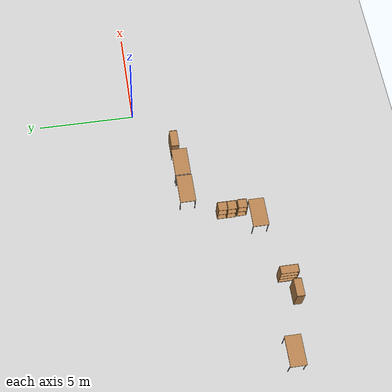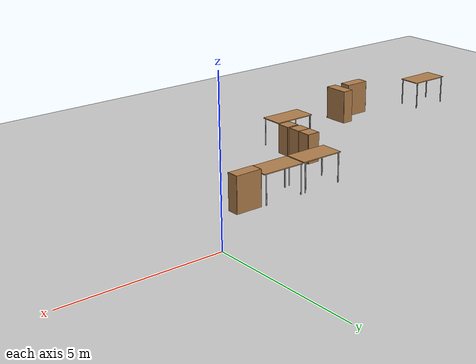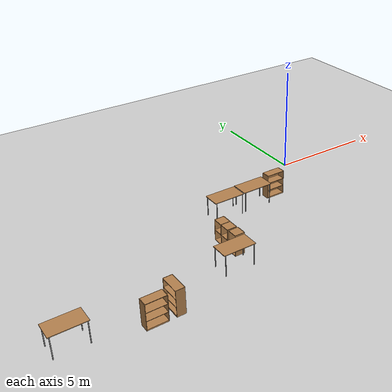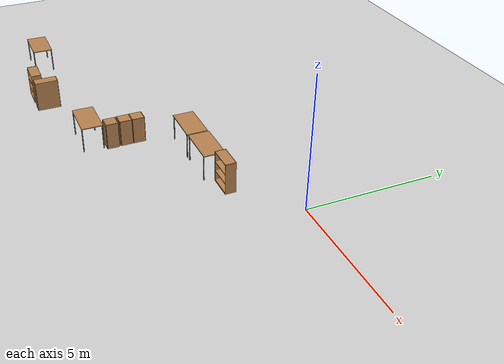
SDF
<sdf version="1.6">
 <world name="default">
  <model name="ground_plane">
   <static>1</static>
   <link name="link">
    <collision name="collision">
     <geometry><plane><normal>0 0 1</normal><size>100 100</size></plane></geometry>
     <surface>
      <contact><collide_bitmask>65535</collide_bitmask></contact>
      <friction><ode><mu>100</mu><mu2>50</mu2></ode></friction>
     </surface>
    </collision>
    <visual name="visual">
     <cast_shadows>0</cast_shadows>
     <geometry><plane><normal>0 0 1</normal><size>100 100</size></plane></geometry>
     <material>
      <script><uri>file://media/materials/scripts/gazebo.material</uri><name>Gazebo/Grey</name></script>
     </material>
    </visual>
   </link>
  </model>
  <model name="5th_floor_3.2">
   <model name="bookshelf">
    <static>1</static>
    <link name="link">
     <inertial><mass>1</mass></inertial>
     <collision name="back">
      <pose>0 0.005 0.6 0 -0 0</pose>
      <geometry><box><size>0.9 0.01 1.2</size></box></geometry>
     </collision>
     <visual name="visual1">
      <pose>0 0.005 0.6 0 -0 0</pose>
      <geometry><box><size>0.9 0.01 1.2</size></box></geometry>
      <material>
       <script><uri>file://media/materials/scripts/gazebo.material</uri><name>Gazebo/Wood</name></script>
      </material>
     </visual>
     <collision name="left_side">
      <pose>0.45 -0.195 0.6 0 -0 0</pose>
      <geometry><box><size>0.02 0.4 1.2</size></box></geometry>
     </collision>
     <visual name="visual2">
      <pose>0.45 -0.195 0.6 0 -0 0</pose>
      <geometry><box><size>0.02 0.4 1.2</size></box></geometry>
      <material>
       <script><uri>file://media/materials/scripts/gazebo.material</uri><name>Gazebo/Wood</name></script>
      </material>
     </visual>
     <collision name="right_side">
      <pose>-0.45 -0.195 0.6 0 -0 0</pose>
      <geometry><box><size>0.02 0.4 1.2</size></box></geometry>
     </collision>
     <visual name="visual3">
      <pose>-0.45 -0.195 0.6 0 -0 0</pose>
      <geometry><box><size>0.02 0.4 1.2</size></box></geometry>
      <material>
       <script><uri>file://media/materials/scripts/gazebo.material</uri><name>Gazebo/Wood</name></script>
      </material>
     </visual>
     <collision name="bottom">
      <pose>0 -0.195 0.03 0 -0 0</pose>
      <geometry><box><size>0.88 0.4 0.06</size></box></geometry>
     </collision>
     <visual name="visual4">
      <pose>0 -0.195 0.03 0 -0 0</pose>
      <geometry><box><size>0.88 0.4 0.06</size></box></geometry>
      <material>
       <script><uri>file://media/materials/scripts/gazebo.material</uri><name>Gazebo/Wood</name></script>
      </material>
     </visual>
     <collision name="top">
      <pose>0 -0.195 1.19 0 -0 0</pose>
      <geometry><box><size>0.88 0.4 0.02</size></box></geometry>
     </collision>
     <visual name="visual5">
      <pose>0 -0.195 1.19 0 -0 0</pose>
      <geometry><box><size>0.88 0.4 0.02</size></box></geometry>
      <material>
       <script><uri>file://media/materials/scripts/gazebo.material</uri><name>Gazebo/Wood</name></script>
      </material>
     </visual>
     <collision name="low_shelf">
      <pose>0 -0.195 0.43 0 -0 0</pose>
      <geometry><box><size>0.88 0.4 0.02</size></box></geometry>
     </collision>
     <visual name="visual6">
      <pose>0 -0.195 0.43 0 -0 0</pose>
      <geometry><box><size>0.88 0.4 0.02</size></box></geometry>
      <material>
       <script><uri>file://media/materials/scripts/gazebo.material</uri><name>Gazebo/Wood</name></script>
      </material>
     </visual>
     <collision name="high_shelf">
      <pose>0 -0.195 0.8 0 -0 0</pose>
      <geometry><box><size>0.88 0.4 0.02</size></box></geometry>
     </collision>
     <visual name="visual7">
      <pose>0 -0.195 0.8 0 -0 0</pose>
      <geometry><box><size>0.88 0.4 0.02</size></box></geometry>
      <material>
       <script><uri>file://media/materials/scripts/gazebo.material</uri><name>Gazebo/Wood</name></script>
      </material>
     </visual>
    </link>
    <pose>3.59774 2.10176 0 0 -0 0</pose>
   </model>
   <model name="bookshelf_0">
    <static>1</static>
    <link name="link">
     <inertial><mass>1</mass></inertial>
     <collision name="back">
      <pose>0 0.005 0.6 0 -0 0</pose>
      <geometry><box><size>0.9 0.01 1.2</size></box></geometry>
     </collision>
     <visual name="visual1">
      <pose>0 0.005 0.6 0 -0 0</pose>
      <geometry><box><size>0.9 0.01 1.2</size></box></geometry>
      <material>
       <script><uri>file://media/materials/scripts/gazebo.material</uri><name>Gazebo/Wood</name></script>
      </material>
     </visual>
     <collision name="left_side">
      <pose>0.45 -0.195 0.6 0 -0 0</pose>
      <geometry><box><size>0.02 0.4 1.2</size></box></geometry>
     </collision>
     <visual name="visual2">
      <pose>0.45 -0.195 0.6 0 -0 0</pose>
      <geometry><box><size>0.02 0.4 1.2</size></box></geometry>
      <material>
       <script><uri>file://media/materials/scripts/gazebo.material</uri><name>Gazebo/Wood</name></script>
      </material>
     </visual>
     <collision name="right_side">
      <pose>-0.45 -0.195 0.6 0 -0 0</pose>
      <geometry><box><size>0.02 0.4 1.2</size></box></geometry>
     </collision>
     <visual name="visual3">
      <pose>-0.45 -0.195 0.6 0 -0 0</pose>
      <geometry><box><size>0.02 0.4 1.2</size></box></geometry>
      <material>
       <script><uri>file://media/materials/scripts/gazebo.material</uri><name>Gazebo/Wood</name></script>
      </material>
     </visual>
     <collision name="bottom">
      <pose>0 -0.195 0.03 0 -0 0</pose>
      <geometry><box><size>0.88 0.4 0.06</size></box></geometry>
     </collision>
     <visual name="visual4">
      <pose>0 -0.195 0.03 0 -0 0</pose>
      <geometry><box><size>0.88 0.4 0.06</size></box></geometry>
      <material>
       <script><uri>file://media/materials/scripts/gazebo.material</uri><name>Gazebo/Wood</name></script>
      </material>
     </visual>
     <collision name="top">
      <pose>0 -0.195 1.19 0 -0 0</pose>
      <geometry><box><size>0.88 0.4 0.02</size></box></geometry>
     </collision>
     <visual name="visual5">
      <pose>0 -0.195 1.19 0 -0 0</pose>
      <geometry><box><size>0.88 0.4 0.02</size></box></geometry>
      <material>
       <script><uri>file://media/materials/scripts/gazebo.material</uri><name>Gazebo/Wood</name></script>
      </material>
     </visual>
     <collision name="low_shelf">
      <pose>0 -0.195 0.43 0 -0 0</pose>
      <geometry><box><size>0.88 0.4 0.02</size></box></geometry>
     </collision>
     <visual name="visual6">
      <pose>0 -0.195 0.43 0 -0 0</pose>
      <geometry><box><size>0.88 0.4 0.02</size></box></geometry>
      <material>
       <script><uri>file://media/materials/scripts/gazebo.material</uri><name>Gazebo/Wood</name></script>
      </material>
     </visual>
     <collision name="high_shelf">
      <pose>0 -0.195 0.8 0 -0 0</pose>
      <geometry><box><size>0.88 0.4 0.02</size></box></geometry>
     </collision>
     <visual name="visual7">
      <pose>0 -0.195 0.8 0 -0 0</pose>
      <geometry><box><size>0.88 0.4 0.02</size></box></geometry>
      <material>
       <script><uri>file://media/materials/scripts/gazebo.material</uri><name>Gazebo/Wood</name></script>
      </material>
     </visual>
    </link>
    <pose>-4.10703 -2.55567 0 0 0 -1.56663</pose>
   </model>
   <model name="cabinet">
    <static>1</static>
    <link name="cabinet_bottom_plate">
     <inertial>
      <pose>0 0 -1 0 -0 0</pose>
      <inertia><ixx>2.05</ixx><ixy>0</ixy><ixz>0</ixz><iyy>2.05</iyy><iyz>0</iyz><izz>2.05</izz></inertia>
      <mass>25</mass>
     </inertial>
     <collision name="cabinet_bottom_plate_geom">
      <pose>0 0 0.01 0 -0 0</pose>
      <geometry><box><size>0.45 0.45 0.02</size></box></geometry>
     </collision>
     <visual name="cabinet_bottom_plate_geom_visual">
      <pose>0 0 0.01 0 -0 0</pose>
      <geometry><box><size>0.45 0.45 0.02</size></box></geometry>
      <material>
       <script><uri>file://media/materials/scripts/gazebo.material</uri><name>Gazebo/Wood</name></script>
      </material>
     </visual>
     <collision name="cabinet_bottom_plate_geom_cabinet_back_plate">
      <pose>0.235 0 0.51 0 -0 0</pose>
      <geometry><box><size>0.02 0.45 1.02</size></box></geometry>
     </collision>
     <visual name="cabinet_bottom_plate_geom_cabinet_back_plate_visual">
      <pose>0.235 0 0.51 0 -0 0</pose>
      <geometry><box><size>0.02 0.45 1.02</size></box></geometry>
      <material>
       <script><uri>file://media/materials/scripts/gazebo.material</uri><name>Gazebo/Wood</name></script>
      </material>
     </visual>
     <collision name="cabinet_bottom_plate_geom_cabinet_left_plate">
      <pose>0 0.235 0.51 0 -0 0</pose>
      <geometry><box><size>0.45 0.02 1.02</size></box></geometry>
     </collision>
     <visual name="cabinet_bottom_plate_geom_cabinet_left_plate_visual">
      <pose>0 0.235 0.51 0 -0 0</pose>
      <geometry><box><size>0.45 0.02 1.02</size></box></geometry>
      <material>
       <script><uri>file://media/materials/scripts/gazebo.material</uri><name>Gazebo/Wood</name></script>
      </material>
     </visual>
     <collision name="cabinet_bottom_plate_geom_cabinet_middle_plate">
      <pose>0 0 0.51 0 -0 0</pose>
      <geometry><box><size>0.45 0.45 0.02</size></box></geometry>
     </collision>
     <visual name="cabinet_bottom_plate_geom_cabinet_middle_plate_visual">
      <pose>0 0 0.51 0 -0 0</pose>
      <geometry><box><size>0.45 0.45 0.02</size></box></geometry>
      <material>
       <script><uri>file://media/materials/scripts/gazebo.material</uri><name>Gazebo/Wood</name></script>
      </material>
     </visual>
     <collision name="cabinet_bottom_plate_geom_cabinet_right_plate">
      <pose>0 -0.235 0.51 0 -0 0</pose>
      <geometry><box><size>0.45 0.02 1.02</size></box></geometry>
     </collision>
     <visual name="cabinet_bottom_plate_geom_cabinet_right_plate_visual">
      <pose>0 -0.235 0.51 0 -0 0</pose>
      <geometry><box><size>0.45 0.02 1.02</size></box></geometry>
      <material>
       <script><uri>file://media/materials/scripts/gazebo.material</uri><name>Gazebo/Wood</name></script>
      </material>
     </visual>
     <collision name="cabinet_bottom_plate_geom_cabinet_top_plate">
      <pose>0 0 1.01 0 -0 0</pose>
      <geometry><box><size>0.45 0.45 0.02</size></box></geometry>
     </collision>
     <visual name="cabinet_bottom_plate_geom_cabinet_top_plate_visual">
      <pose>0 0 1.01 0 -0 0</pose>
      <geometry><box><size>0.45 0.45 0.02</size></box></geometry>
      <material>
       <script><uri>file://media/materials/scripts/gazebo.material</uri><name>Gazebo/Wood</name></script>
      </material>
     </visual>
    </link>
    <pose>-0.500512 0.057126 0 0 -0 0</pose>
   </model>
   <model name="cabinet_0">
    <static>1</static>
    <link name="cabinet_bottom_plate">
     <inertial>
      <pose>0 0 -1 0 -0 0</pose>
      <inertia><ixx>2.05</ixx><ixy>0</ixy><ixz>0</ixz><iyy>2.05</iyy><iyz>0</iyz><izz>2.05</izz></inertia>
      <mass>25</mass>
     </inertial>
     <collision name="cabinet_bottom_plate_geom">
      <pose>0 0 0.01 0 -0 0</pose>
      <geometry><box><size>0.45 0.45 0.02</size></box></geometry>
     </collision>
     <visual name="cabinet_bottom_plate_geom_visual">
      <pose>0 0 0.01 0 -0 0</pose>
      <geometry><box><size>0.45 0.45 0.02</size></box></geometry>
      <material>
       <script><uri>file://media/materials/scripts/gazebo.material</uri><name>Gazebo/Wood</name></script>
      </material>
     </visual>
     <collision name="cabinet_bottom_plate_geom_cabinet_back_plate">
      <pose>0.235 0 0.51 0 -0 0</pose>
      <geometry><box><size>0.02 0.45 1.02</size></box></geometry>
     </collision>
     <visual name="cabinet_bottom_plate_geom_cabinet_back_plate_visual">
      <pose>0.235 0 0.51 0 -0 0</pose>
      <geometry><box><size>0.02 0.45 1.02</size></box></geometry>
      <material>
       <script><uri>file://media/materials/scripts/gazebo.material</uri><name>Gazebo/Wood</name></script>
      </material>
     </visual>
     <collision name="cabinet_bottom_plate_geom_cabinet_left_plate">
      <pose>0 0.235 0.51 0 -0 0</pose>
      <geometry><box><size>0.45 0.02 1.02</size></box></geometry>
     </collision>
     <visual name="cabinet_bottom_plate_geom_cabinet_left_plate_visual">
      <pose>0 0.235 0.51 0 -0 0</pose>
      <geometry><box><size>0.45 0.02 1.02</size></box></geometry>
      <material>
       <script><uri>file://media/materials/scripts/gazebo.material</uri><name>Gazebo/Wood</name></script>
      </material>
     </visual>
     <collision name="cabinet_bottom_plate_geom_cabinet_middle_plate">
      <pose>0 0 0.51 0 -0 0</pose>
      <geometry><box><size>0.45 0.45 0.02</size></box></geometry>
     </collision>
     <visual name="cabinet_bottom_plate_geom_cabinet_middle_plate_visual">
      <pose>0 0 0.51 0 -0 0</pose>
      <geometry><box><size>0.45 0.45 0.02</size></box></geometry>
      <material>
       <script><uri>file://media/materials/scripts/gazebo.material</uri><name>Gazebo/Wood</name></script>
      </material>
     </visual>
     <collision name="cabinet_bottom_plate_geom_cabinet_right_plate">
      <pose>0 -0.235 0.51 0 -0 0</pose>
      <geometry><box><size>0.45 0.02 1.02</size></box></geometry>
     </collision>
     <visual name="cabinet_bottom_plate_geom_cabinet_right_plate_visual">
      <pose>0 -0.235 0.51 0 -0 0</pose>
      <geometry><box><size>0.45 0.02 1.02</size></box></geometry>
      <material>
       <script><uri>file://media/materials/scripts/gazebo.material</uri><name>Gazebo/Wood</name></script>
      </material>
     </visual>
     <collision name="cabinet_bottom_plate_geom_cabinet_top_plate">
      <pose>0 0 1.01 0 -0 0</pose>
      <geometry><box><size>0.45 0.45 0.02</size></box></geometry>
     </collision>
     <visual name="cabinet_bottom_plate_geom_cabinet_top_plate_visual">
      <pose>0 0 1.01 0 -0 0</pose>
      <geometry><box><size>0.45 0.45 0.02</size></box></geometry>
      <material>
       <script><uri>file://media/materials/scripts/gazebo.material</uri><name>Gazebo/Wood</name></script>
      </material>
     </visual>
    </link>
    <pose>-0.500512 -0.428354 0 0 -0 0</pose>
   </model>
   <model name="cabinet_1">
    <static>1</static>
    <link name="cabinet_bottom_plate">
     <inertial>
      <pose>0 0 -1 0 -0 0</pose>
      <inertia><ixx>2.05</ixx><ixy>0</ixy><ixz>0</ixz><iyy>2.05</iyy><iyz>0</iyz><izz>2.05</izz></inertia>
      <mass>25</mass>
     </inertial>
     <collision name="cabinet_bottom_plate_geom">
      <pose>0 0 0.01 0 -0 0</pose>
      <geometry><box><size>0.45 0.45 0.02</size></box></geometry>
     </collision>
     <visual name="cabinet_bottom_plate_geom_visual">
      <pose>0 0 0.01 0 -0 0</pose>
      <geometry><box><size>0.45 0.45 0.02</size></box></geometry>
      <material>
       <script><uri>file://media/materials/scripts/gazebo.material</uri><name>Gazebo/Wood</name></script>
      </material>
     </visual>
     <collision name="cabinet_bottom_plate_geom_cabinet_back_plate">
      <pose>0.235 0 0.51 0 -0 0</pose>
      <geometry><box><size>0.02 0.45 1.02</size></box></geometry>
     </collision>
     <visual name="cabinet_bottom_plate_geom_cabinet_back_plate_visual">
      <pose>0.235 0 0.51 0 -0 0</pose>
      <geometry><box><size>0.02 0.45 1.02</size></box></geometry>
      <material>
       <script><uri>file://media/materials/scripts/gazebo.material</uri><name>Gazebo/Wood</name></script>
      </material>
     </visual>
     <collision name="cabinet_bottom_plate_geom_cabinet_left_plate">
      <pose>0 0.235 0.51 0 -0 0</pose>
      <geometry><box><size>0.45 0.02 1.02</size></box></geometry>
     </collision>
     <visual name="cabinet_bottom_plate_geom_cabinet_left_plate_visual">
      <pose>0 0.235 0.51 0 -0 0</pose>
      <geometry><box><size>0.45 0.02 1.02</size></box></geometry>
      <material>
       <script><uri>file://media/materials/scripts/gazebo.material</uri><name>Gazebo/Wood</name></script>
      </material>
     </visual>
     <collision name="cabinet_bottom_plate_geom_cabinet_middle_plate">
      <pose>0 0 0.51 0 -0 0</pose>
      <geometry><box><size>0.45 0.45 0.02</size></box></geometry>
     </collision>
     <visual name="cabinet_bottom_plate_geom_cabinet_middle_plate_visual">
      <pose>0 0 0.51 0 -0 0</pose>
      <geometry><box><size>0.45 0.45 0.02</size></box></geometry>
      <material>
       <script><uri>file://media/materials/scripts/gazebo.material</uri><name>Gazebo/Wood</name></script>
      </material>
     </visual>
     <collision name="cabinet_bottom_plate_geom_cabinet_right_plate">
      <pose>0 -0.235 0.51 0 -0 0</pose>
      <geometry><box><size>0.45 0.02 1.02</size></box></geometry>
     </collision>
     <visual name="cabinet_bottom_plate_geom_cabinet_right_plate_visual">
      <pose>0 -0.235 0.51 0 -0 0</pose>
      <geometry><box><size>0.45 0.02 1.02</size></box></geometry>
      <material>
       <script><uri>file://media/materials/scripts/gazebo.material</uri><name>Gazebo/Wood</name></script>
      </material>
     </visual>
     <collision name="cabinet_bottom_plate_geom_cabinet_top_plate">
      <pose>0 0 1.01 0 -0 0</pose>
      <geometry><box><size>0.45 0.45 0.02</size></box></geometry>
     </collision>
     <visual name="cabinet_bottom_plate_geom_cabinet_top_plate_visual">
      <pose>0 0 1.01 0 -0 0</pose>
      <geometry><box><size>0.45 0.45 0.02</size></box></geometry>
      <material>
       <script><uri>file://media/materials/scripts/gazebo.material</uri><name>Gazebo/Wood</name></script>
      </material>
     </visual>
    </link>
    <pose>-0.47735 -0.960159 0 0 -0 0</pose>
   </model>
   <model name="table">
    <static>1</static>
    <link name="link">
     <collision name="surface">
      <pose>0 0 1 0 -0 0</pose>
      <geometry><box><size>1.5 0.8 0.03</size></box></geometry>
      <surface><friction><ode><mu>0.6</mu><mu2>0.6</mu2></ode></friction></surface>
     </collision>
     <visual name="visual1">
      <pose>0 0 1 0 -0 0</pose>
      <geometry><box><size>1.5 0.8 0.03</size></box></geometry>
      <material>
       <script><uri>file://media/materials/scripts/gazebo.material</uri><name>Gazebo/Wood</name></script>
      </material>
     </visual>
     <collision name="front_left_leg">
      <pose>0.68 0.38 0.5 0 -0 0</pose>
      <geometry><cylinder><radius>0.02</radius><length>1</length></cylinder></geometry>
     </collision>
     <visual name="front_left_leg">
      <pose>0.68 0.38 0.5 0 -0 0</pose>
      <geometry><cylinder><radius>0.02</radius><length>1</length></cylinder></geometry>
      <material>
       <script><uri>file://media/materials/scripts/gazebo.material</uri><name>Gazebo/Grey</name></script>
      </material>
     </visual>
     <collision name="front_right_leg">
      <pose>0.68 -0.38 0.5 0 -0 0</pose>
      <geometry><cylinder><radius>0.02</radius><length>1</length></cylinder></geometry>
     </collision>
     <visual name="front_right_leg">
      <pose>0.68 -0.38 0.5 0 -0 0</pose>
      <geometry><cylinder><radius>0.02</radius><length>1</length></cylinder></geometry>
      <material>
       <script><uri>file://media/materials/scripts/gazebo.material</uri><name>Gazebo/Grey</name></script>
      </material>
     </visual>
     <collision name="back_right_leg">
      <pose>-0.68 -0.38 0.5 0 -0 0</pose>
      <geometry><cylinder><radius>0.02</radius><length>1</length></cylinder></geometry>
     </collision>
     <visual name="back_right_leg">
      <pose>-0.68 -0.38 0.5 0 -0 0</pose>
      <geometry><cylinder><radius>0.02</radius><length>1</length></cylinder></geometry>
      <material>
       <script><uri>file://media/materials/scripts/gazebo.material</uri><name>Gazebo/Grey</name></script>
      </material>
     </visual>
     <collision name="back_left_leg">
      <pose>-0.68 0.38 0.5 0 -0 0</pose>
      <geometry><cylinder><radius>0.02</radius><length>1</length></cylinder></geometry>
     </collision>
     <visual name="back_left_leg">
      <pose>-0.68 0.38 0.5 0 -0 0</pose>
      <geometry><cylinder><radius>0.02</radius><length>1</length></cylinder></geometry>
      <material>
       <script><uri>file://media/materials/scripts/gazebo.material</uri><name>Gazebo/Grey</name></script>
      </material>
     </visual>
    </link>
    <pose>0.746904 1.71954 0 0 -0 0</pose>
   </model>
   <model name="table_0">
    <static>1</static>
    <link name="link">
     <collision name="surface">
      <pose>0 0 1 0 -0 0</pose>
      <geometry><box><size>1.5 0.8 0.03</size></box></geometry>
      <surface><friction><ode><mu>0.6</mu><mu2>0.6</mu2></ode></friction></surface>
     </collision>
     <visual name="visual1">
      <pose>0 0 1 0 -0 0</pose>
      <geometry><box><size>1.5 0.8 0.03</size></box></geometry>
      <material>
       <script><uri>file://media/materials/scripts/gazebo.material</uri><name>Gazebo/Wood</name></script>
      </material>
     </visual>
     <collision name="front_left_leg">
      <pose>0.68 0.38 0.5 0 -0 0</pose>
      <geometry><cylinder><radius>0.02</radius><length>1</length></cylinder></geometry>
     </collision>
     <visual name="front_left_leg">
      <pose>0.68 0.38 0.5 0 -0 0</pose>
      <geometry><cylinder><radius>0.02</radius><length>1</length></cylinder></geometry>
      <material>
       <script><uri>file://media/materials/scripts/gazebo.material</uri><name>Gazebo/Grey</name></script>
      </material>
     </visual>
     <collision name="front_right_leg">
      <pose>0.68 -0.38 0.5 0 -0 0</pose>
      <geometry><cylinder><radius>0.02</radius><length>1</length></cylinder></geometry>
     </collision>
     <visual name="front_right_leg">
      <pose>0.68 -0.38 0.5 0 -0 0</pose>
      <geometry><cylinder><radius>0.02</radius><length>1</length></cylinder></geometry>
      <material>
       <script><uri>file://media/materials/scripts/gazebo.material</uri><name>Gazebo/Grey</name></script>
      </material>
     </visual>
     <collision name="back_right_leg">
      <pose>-0.68 -0.38 0.5 0 -0 0</pose>
      <geometry><cylinder><radius>0.02</radius><length>1</length></cylinder></geometry>
     </collision>
     <visual name="back_right_leg">
      <pose>-0.68 -0.38 0.5 0 -0 0</pose>
      <geometry><cylinder><radius>0.02</radius><length>1</length></cylinder></geometry>
      <material>
       <script><uri>file://media/materials/scripts/gazebo.material</uri><name>Gazebo/Grey</name></script>
      </material>
     </visual>
     <collision name="back_left_leg">
      <pose>-0.68 0.38 0.5 0 -0 0</pose>
      <geometry><cylinder><radius>0.02</radius><length>1</length></cylinder></geometry>
     </collision>
     <visual name="back_left_leg">
      <pose>-0.68 0.38 0.5 0 -0 0</pose>
      <geometry><cylinder><radius>0.02</radius><length>1</length></cylinder></geometry>
      <material>
       <script><uri>file://media/materials/scripts/gazebo.material</uri><name>Gazebo/Grey</name></script>
      </material>
     </visual>
    </link>
    <pose>2.29592 1.7426 0 0 -0 0</pose>
   </model>
   <model name="table_1">
    <static>1</static>
    <link name="link">
     <collision name="surface">
      <pose>0 0 1 0 -0 0</pose>
      <geometry><box><size>1.5 0.8 0.03</size></box></geometry>
      <surface><friction><ode><mu>0.6</mu><mu2>0.6</mu2></ode></friction></surface>
     </collision>
     <visual name="visual1">
      <pose>0 0 1 0 -0 0</pose>
      <geometry><box><size>1.5 0.8 0.03</size></box></geometry>
      <material>
       <script><uri>file://media/materials/scripts/gazebo.material</uri><name>Gazebo/Wood</name></script>
      </material>
     </visual>
     <collision name="front_left_leg">
      <pose>0.68 0.38 0.5 0 -0 0</pose>
      <geometry><cylinder><radius>0.02</radius><length>1</length></cylinder></geometry>
     </collision>
     <visual name="front_left_leg">
      <pose>0.68 0.38 0.5 0 -0 0</pose>
      <geometry><cylinder><radius>0.02</radius><length>1</length></cylinder></geometry>
      <material>
       <script><uri>file://media/materials/scripts/gazebo.material</uri><name>Gazebo/Grey</name></script>
      </material>
     </visual>
     <collision name="front_right_leg">
      <pose>0.68 -0.38 0.5 0 -0 0</pose>
      <geometry><cylinder><radius>0.02</radius><length>1</length></cylinder></geometry>
     </collision>
     <visual name="front_right_leg">
      <pose>0.68 -0.38 0.5 0 -0 0</pose>
      <geometry><cylinder><radius>0.02</radius><length>1</length></cylinder></geometry>
      <material>
       <script><uri>file://media/materials/scripts/gazebo.material</uri><name>Gazebo/Grey</name></script>
      </material>
     </visual>
     <collision name="back_right_leg">
      <pose>-0.68 -0.38 0.5 0 -0 0</pose>
      <geometry><cylinder><radius>0.02</radius><length>1</length></cylinder></geometry>
     </collision>
     <visual name="back_right_leg">
      <pose>-0.68 -0.38 0.5 0 -0 0</pose>
      <geometry><cylinder><radius>0.02</radius><length>1</length></cylinder></geometry>
      <material>
       <script><uri>file://media/materials/scripts/gazebo.material</uri><name>Gazebo/Grey</name></script>
      </material>
     </visual>
     <collision name="back_left_leg">
      <pose>-0.68 0.38 0.5 0 -0 0</pose>
      <geometry><cylinder><radius>0.02</radius><length>1</length></cylinder></geometry>
     </collision>
     <visual name="back_left_leg">
      <pose>-0.68 0.38 0.5 0 -0 0</pose>
      <geometry><cylinder><radius>0.02</radius><length>1</length></cylinder></geometry>
      <material>
       <script><uri>file://media/materials/scripts/gazebo.material</uri><name>Gazebo/Grey</name></script>
      </material>
     </visual>
    </link>
    <pose>-1.05517 -1.67685 0 0 -0 0</pose>
   </model>
   <static>0</static>
   <pose>-5.8522 -3.82308 0 0 -0 0</pose>
  </model>
  <model name="table_13">
   <static>1</static>
   <link name="link">
    <collision name="surface">
     <pose>0 0 1 0 -0 0</pose>
     <geometry><box><size>1.5 0.8 0.03</size></box></geometry>
     <surface><friction><ode><mu>0.6</mu><mu2>0.6</mu2></ode></friction></surface>
    </collision>
    <visual name="visual1">
     <pose>0 0 1 0 -0 0</pose>
     <geometry><box><size>1.5 0.8 0.03</size></box></geometry>
     <material>
      <script><uri>file://media/materials/scripts/gazebo.material</uri><name>Gazebo/Wood</name></script>
     </material>
    </visual>
    <collision name="front_left_leg">
     <pose>0.68 0.38 0.5 0 -0 0</pose>
     <geometry><cylinder><radius>0.02</radius><length>1</length></cylinder></geometry>
    </collision>
    <visual name="front_left_leg">
     <pose>0.68 0.38 0.5 0 -0 0</pose>
     <geometry><cylinder><radius>0.02</radius><length>1</length></cylinder></geometry>
     <material>
      <script><uri>file://media/materials/scripts/gazebo.material</uri><name>Gazebo/Grey</name></script>
     </material>
    </visual>
    <collision name="front_right_leg">
     <pose>0.68 -0.38 0.5 0 -0 0</pose>
     <geometry><cylinder><radius>0.02</radius><length>1</length></cylinder></geometry>
    </collision>
    <visual name="front_right_leg">
     <pose>0.68 -0.38 0.5 0 -0 0</pose>
     <geometry><cylinder><radius>0.02</radius><length>1</length></cylinder></geometry>
     <material>
      <script><uri>file://media/materials/scripts/gazebo.material</uri><name>Gazebo/Grey</name></script>
     </material>
    </visual>
    <collision name="back_right_leg">
     <pose>-0.68 -0.38 0.5 0 -0 0</pose>
     <geometry><cylinder><radius>0.02</radius><length>1</length></cylinder></geometry>
    </collision>
    <visual name="back_right_leg">
     <pose>-0.68 -0.38 0.5 0 -0 0</pose>
     <geometry><cylinder><radius>0.02</radius><length>1</length></cylinder></geometry>
     <material>
      <script><uri>file://media/materials/scripts/gazebo.material</uri><name>Gazebo/Grey</name></script>
     </material>
    </visual>
    <collision name="back_left_leg">
     <pose>-0.68 0.38 0.5 0 -0 0</pose>
     <geometry><cylinder><radius>0.02</radius><length>1</length></cylinder></geometry>
    </collision>
    <visual name="back_left_leg">
     <pose>-0.68 0.38 0.5 0 -0 0</pose>
     <geometry><cylinder><radius>0.02</radius><length>1</length></cylinder></geometry>
     <material>
      <script><uri>file://media/materials/scripts/gazebo.material</uri><name>Gazebo/Grey</name></script>
     </material>
    </visual>
   </link>
   <pose>-14.0778 -5.87648 0 0 -0 0</pose>
  </model>
  <model name="bookshelf_5">
   <static>1</static>
   <link name="link">
    <inertial><mass>1</mass></inertial>
    <collision name="back">
     <pose>0 0.005 0.6 0 -0 0</pose>
     <geometry><box><size>0.9 0.01 1.2</size></box></geometry>
    </collision>
    <visual name="visual1">
     <pose>0 0.005 0.6 0 -0 0</pose>
     <geometry><box><size>0.9 0.01 1.2</size></box></geometry>
     <material>
      <script><uri>file://media/materials/scripts/gazebo.material</uri><name>Gazebo/Wood</name></script>
     </material>
    </visual>
    <collision name="left_side">
     <pose>0.45 -0.195 0.6 0 -0 0</pose>
     <geometry><box><size>0.02 0.4 1.2</size></box></geometry>
    </collision>
    <visual name="visual2">
     <pose>0.45 -0.195 0.6 0 -0 0</pose>
     <geometry><box><size>0.02 0.4 1.2</size></box></geometry>
     <material>
      <script><uri>file://media/materials/scripts/gazebo.material</uri><name>Gazebo/Wood</name></script>
     </material>
    </visual>
    <collision name="right_side">
     <pose>-0.45 -0.195 0.6 0 -0 0</pose>
     <geometry><box><size>0.02 0.4 1.2</size></box></geometry>
    </collision>
    <visual name="visual3">
     <pose>-0.45 -0.195 0.6 0 -0 0</pose>
     <geometry><box><size>0.02 0.4 1.2</size></box></geometry>
     <material>
      <script><uri>file://media/materials/scripts/gazebo.material</uri><name>Gazebo/Wood</name></script>
     </material>
    </visual>
    <collision name="bottom">
     <pose>0 -0.195 0.03 0 -0 0</pose>
     <geometry><box><size>0.88 0.4 0.06</size></box></geometry>
    </collision>
    <visual name="visual4">
     <pose>0 -0.195 0.03 0 -0 0</pose>
     <geometry><box><size>0.88 0.4 0.06</size></box></geometry>
     <material>
      <script><uri>file://media/materials/scripts/gazebo.material</uri><name>Gazebo/Wood</name></script>
     </material>
    </visual>
    <collision name="top">
     <pose>0 -0.195 1.19 0 -0 0</pose>
     <geometry><box><size>0.88 0.4 0.02</size></box></geometry>
    </collision>
    <visual name="visual5">
     <pose>0 -0.195 1.19 0 -0 0</pose>
     <geometry><box><size>0.88 0.4 0.02</size></box></geometry>
     <material>
      <script><uri>file://media/materials/scripts/gazebo.material</uri><name>Gazebo/Wood</name></script>
     </material>
    </visual>
    <collision name="low_shelf">
     <pose>0 -0.195 0.43 0 -0 0</pose>
     <geometry><box><size>0.88 0.4 0.02</size></box></geometry>
    </collision>
    <visual name="visual6">
     <pose>0 -0.195 0.43 0 -0 0</pose>
     <geometry><box><size>0.88 0.4 0.02</size></box></geometry>
     <material>
      <script><uri>file://media/materials/scripts/gazebo.material</uri><name>Gazebo/Wood</name></script>
     </material>
    </visual>
    <collision name="high_shelf">
     <pose>0 -0.195 0.8 0 -0 0</pose>
     <geometry><box><size>0.88 0.4 0.02</size></box></geometry>
    </collision>
    <visual name="visual7">
     <pose>0 -0.195 0.8 0 -0 0</pose>
     <geometry><box><size>0.88 0.4 0.02</size></box></geometry>
     <material>
      <script><uri>file://media/materials/scripts/gazebo.material</uri><name>Gazebo/Wood</name></script>
     </material>
    </visual>
   </link>
   <pose>-11.1183 -6.45451 0 0 -0 0</pose>
  </model>
 </world>
</sdf>
